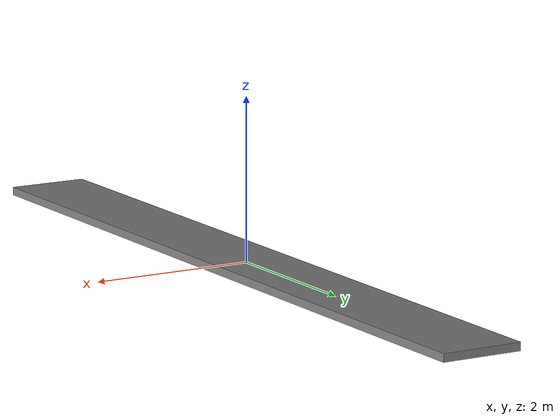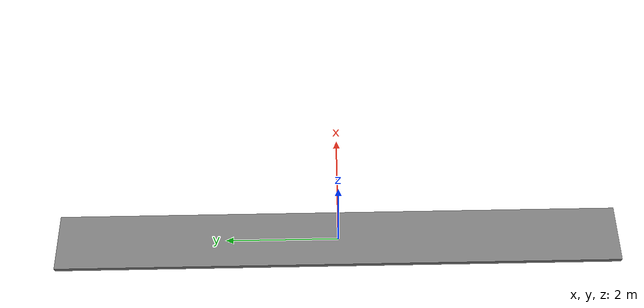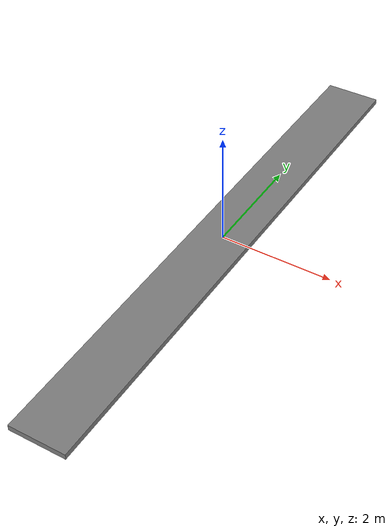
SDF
<sdf version="1.6">
  <world name="empty_world">
    <model name="straight_road">
      <pose>0 0 0 0 0 0</pose>
      <link name="link">
        <collision name="collision">
          <geometry>
            <box>
              <size>1 10 0.1</size>
            </box>
          </geometry>
        </collision>
        <visual name="visual">
          <geometry>
            <box>
              <size>1 10 0.1</size>
            </box>
          </geometry>
          <material>
            <ambient>0.5 0.5 0.5 1</ambient>
            <diffuse>0.5 0.5 0.5 1</diffuse>
          </material>
        </visual>
      </link>
    </model>
  </world>
</sdf>
